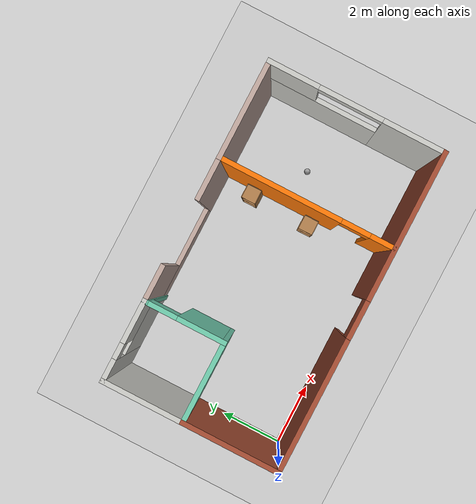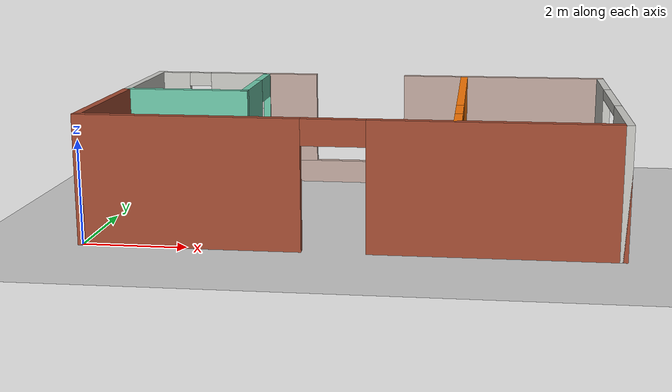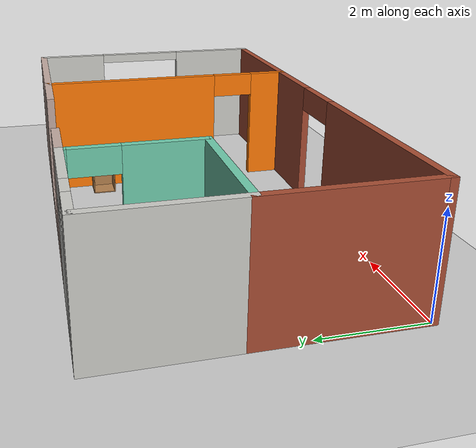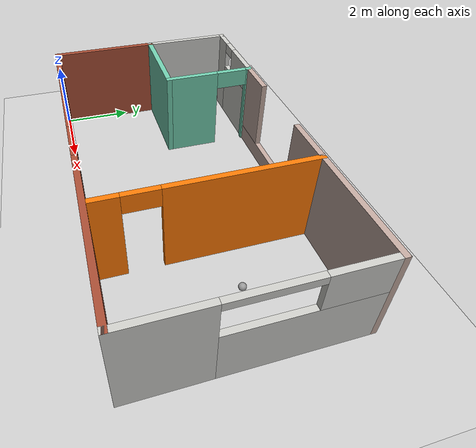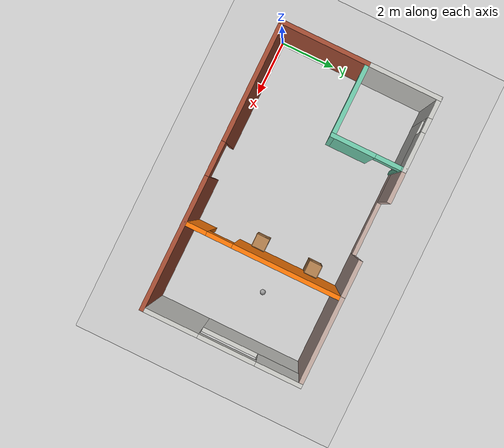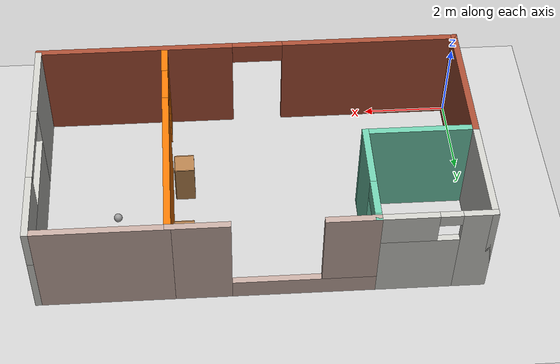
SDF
<sdf version="1.6">
 <world name="default">
  <model name="ground_plane">
   <static>1</static>
   <link name="link">
    <collision name="collision">
     <geometry><plane><normal>0 0 1</normal><size>100 100</size></plane></geometry>
     <surface><friction><ode><mu>100</mu><mu2>50</mu2></ode></friction></surface>
    </collision>
    <visual name="visual">
     <cast_shadows>0</cast_shadows>
     <geometry><plane><normal>0 0 1</normal><size>100 100</size></plane></geometry>
     <material>
      <script><uri>file://media/materials/scripts/gazebo.material</uri><name>Gazebo/Grey</name></script>
     </material>
    </visual>
   </link>
  </model>
  <model name="casa">
   <pose>5 2.75 0 0 -0 0</pose>
   <link name="Wall_29">
    <collision name="Wall_29_Collision">
     <geometry><box><size>3.15 0.15 2.5</size></box></geometry>
     <pose>0 0 1.25 0 -0 0</pose>
    </collision>
    <visual name="Wall_29_Visual">
     <pose>0 0 1.25 0 -0 0</pose>
     <geometry><box><size>3.15 0.15 2.5</size></box></geometry>
     <material>
      <script><uri>file://media/materials/scripts/gazebo.material</uri><name>Gazebo/Bricks</name></script>
      <ambient>1 1 1 1</ambient>
     </material>
     <meta><layer>0</layer></meta>
    </visual>
    <pose>-5 -1.25 0 0 -0 1.5708</pose>
   </link>
   <link name="Wall_31">
    <collision name="Wall_31_Collision">
     <geometry><box><size>2.65 0.15 2.5</size></box></geometry>
     <pose>0 0 1.25 0 -0 0</pose>
    </collision>
    <visual name="Wall_31_Visual">
     <pose>0 0 1.25 0 -0 0</pose>
     <geometry><box><size>2.65 0.15 2.5</size></box></geometry>
     <material>
      <script><uri>file://media/materials/scripts/gazebo.material</uri><name>Gazebo/CeilingTiled</name></script>
      <ambient>1 1 1 1</ambient>
     </material>
     <meta><layer>0</layer></meta>
    </visual>
    <pose>-5 1.5 0 0 -0 1.5708</pose>
   </link>
   <link name="Wall_33">
    <pose>-3.75 2.75 0 0 -0 0</pose>
    <visual name="Wall_33_Visual_0">
     <pose>-0.942604 0 1.25 0 -0 0</pose>
     <geometry><box><size>0.764791 0.15 2.5</size></box></geometry>
     <material>
      <script><uri>file://media/materials/scripts/gazebo.material</uri><name>Gazebo/CeilingTiled</name></script>
      <ambient>1 1 1 1</ambient>
     </material>
     <meta><layer>0</layer></meta>
    </visual>
    <collision name="Wall_33_Collision_0">
     <geometry><box><size>0.764791 0.15 2.5</size></box></geometry>
     <pose>-0.942604 0 1.25 0 -0 0</pose>
    </collision>
    <visual name="Wall_33_Visual_1">
     <pose>0.382396 0 0.85 0 -0 0</pose>
     <geometry><box><size>1.88521 0.15 1.7</size></box></geometry>
     <material>
      <script><uri>file://media/materials/scripts/gazebo.material</uri><name>Gazebo/CeilingTiled</name></script>
      <ambient>1 1 1 1</ambient>
     </material>
     <meta><layer>0</layer></meta>
    </visual>
    <collision name="Wall_33_Collision_1">
     <geometry><box><size>1.88521 0.15 1.7</size></box></geometry>
     <pose>0.382396 0 0.85 0 -0 0</pose>
    </collision>
    <visual name="Wall_33_Visual_2">
     <pose>0.632396 0 2.1 0 -0 0</pose>
     <geometry><box><size>1.38521 0.15 0.8</size></box></geometry>
     <material>
      <script><uri>file://media/materials/scripts/gazebo.material</uri><name>Gazebo/CeilingTiled</name></script>
      <ambient>1 1 1 1</ambient>
     </material>
     <meta><layer>0</layer></meta>
    </visual>
    <collision name="Wall_33_Collision_2">
     <geometry><box><size>1.38521 0.15 0.8</size></box></geometry>
     <pose>0.632396 0 2.1 0 -0 0</pose>
    </collision>
    <visual name="Wall_33_Visual_3">
     <pose>-0.310209 0 2.35 0 -0 0</pose>
     <geometry><box><size>0.5 0.15 0.3</size></box></geometry>
     <material>
      <script><uri>file://media/materials/scripts/gazebo.material</uri><name>Gazebo/CeilingTiled</name></script>
      <ambient>1 1 1 1</ambient>
     </material>
     <meta><layer>0</layer></meta>
    </visual>
    <collision name="Wall_33_Collision_3">
     <geometry><box><size>0.5 0.15 0.3</size></box></geometry>
     <pose>-0.310209 0 2.35 0 -0 0</pose>
    </collision>
   </link>
   <link name="Wall_35">
    <pose>-2.5 1.5 0 0 0 -1.5708</pose>
    <visual name="Wall_35_Visual_0">
     <pose>-1.22797 0 1.25 0 -0 0</pose>
     <geometry><box><size>0.194069 0.15 2.5</size></box></geometry>
     <material>
      <script><uri>file://media/materials/scripts/gazebo.material</uri><name>Gazebo/Grey</name></script>
      <ambient>0.435294 0.796078 0.67451 1</ambient>
     </material>
     <meta><layer>0</layer></meta>
    </visual>
    <collision name="Wall_35_Collision_0">
     <geometry><box><size>0.194069 0.15 2.5</size></box></geometry>
     <pose>-1.22797 0 1.25 0 -0 0</pose>
    </collision>
    <visual name="Wall_35_Visual_1">
     <pose>0.547034 0 1.25 0 -0 0</pose>
     <geometry><box><size>1.55593 0.15 2.5</size></box></geometry>
     <material>
      <script><uri>file://media/materials/scripts/gazebo.material</uri><name>Gazebo/Grey</name></script>
      <ambient>0.435294 0.796078 0.67451 1</ambient>
     </material>
     <meta><layer>0</layer></meta>
    </visual>
    <collision name="Wall_35_Collision_1">
     <geometry><box><size>1.55593 0.15 2.5</size></box></geometry>
     <pose>0.547034 0 1.25 0 -0 0</pose>
    </collision>
    <visual name="Wall_35_Visual_2">
     <pose>-0.680931 0 2.25 0 -0 0</pose>
     <geometry><box><size>0.9 0.15 0.5</size></box></geometry>
     <material>
      <script><uri>file://media/materials/scripts/gazebo.material</uri><name>Gazebo/Grey</name></script>
      <ambient>0.435294 0.796078 0.67451 1</ambient>
     </material>
     <meta><layer>0</layer></meta>
    </visual>
    <collision name="Wall_35_Collision_2">
     <geometry><box><size>0.9 0.15 0.5</size></box></geometry>
     <pose>-0.680931 0 2.25 0 -0 0</pose>
    </collision>
   </link>
   <link name="Wall_37">
    <collision name="Wall_37_Collision">
     <geometry><box><size>2.65 0.15 2.5</size></box></geometry>
     <pose>0 0 1.25 0 -0 0</pose>
    </collision>
    <visual name="Wall_37_Visual">
     <pose>0 0 1.25 0 -0 0</pose>
     <geometry><box><size>2.65 0.15 2.5</size></box></geometry>
     <material>
      <script><uri>file://media/materials/scripts/gazebo.material</uri><name>Gazebo/Grey</name></script>
      <ambient>0.435294 0.796078 0.67451 1</ambient>
     </material>
     <meta><layer>0</layer></meta>
    </visual>
    <pose>-3.75 0.25 0 0 -0 0</pose>
   </link>
   <link name="Wall_39">
    <pose>0 -2.75 0 0 -0 0</pose>
    <visual name="Wall_39_Visual_0">
     <pose>-2.95244 0 1.25 0 -0 0</pose>
     <geometry><box><size>4.24512 0.15 2.5</size></box></geometry>
     <material>
      <script><uri>file://media/materials/scripts/gazebo.material</uri><name>Gazebo/Bricks</name></script>
      <ambient>1 1 1 1</ambient>
     </material>
     <meta><layer>0</layer></meta>
    </visual>
    <collision name="Wall_39_Collision_0">
     <geometry><box><size>4.24512 0.15 2.5</size></box></geometry>
     <pose>-2.95244 0 1.25 0 -0 0</pose>
    </collision>
    <visual name="Wall_39_Visual_1">
     <pose>2.72256 0 1.25 0 -0 0</pose>
     <geometry><box><size>4.70488 0.15 2.5</size></box></geometry>
     <material>
      <script><uri>file://media/materials/scripts/gazebo.material</uri><name>Gazebo/Bricks</name></script>
      <ambient>1 1 1 1</ambient>
     </material>
     <meta><layer>0</layer></meta>
    </visual>
    <collision name="Wall_39_Collision_1">
     <geometry><box><size>4.70488 0.15 2.5</size></box></geometry>
     <pose>2.72256 0 1.25 0 -0 0</pose>
    </collision>
    <visual name="Wall_39_Visual_2">
     <pose>-0.229885 0 2.25 0 -0 0</pose>
     <geometry><box><size>1.2 0.15 0.5</size></box></geometry>
     <material>
      <script><uri>file://media/materials/scripts/gazebo.material</uri><name>Gazebo/Bricks</name></script>
      <ambient>1 1 1 1</ambient>
     </material>
     <meta><layer>0</layer></meta>
    </visual>
    <collision name="Wall_39_Collision_2">
     <geometry><box><size>1.2 0.15 0.5</size></box></geometry>
     <pose>-0.229885 0 2.25 0 -0 0</pose>
    </collision>
   </link>
   <link name="Wall_41">
    <pose>5 0 0 0 -0 1.5708</pose>
    <visual name="Wall_41_Visual_0">
     <pose>-1.81897 0 1.25 0 -0 0</pose>
     <geometry><box><size>2.01206 0.15 2.5</size></box></geometry>
     <material>
      <script><uri>file://media/materials/scripts/gazebo.material</uri><name>Gazebo/CeilingTiled</name></script>
      <ambient>1 1 1 1</ambient>
     </material>
     <meta><layer>0</layer></meta>
    </visual>
    <collision name="Wall_41_Collision_0">
     <geometry><box><size>2.01206 0.15 2.5</size></box></geometry>
     <pose>-1.81897 0 1.25 0 -0 0</pose>
    </collision>
    <visual name="Wall_41_Visual_1">
     <pose>1.00603 0 0.75 0 -0 0</pose>
     <geometry><box><size>3.63794 0.15 1.5</size></box></geometry>
     <material>
      <script><uri>file://media/materials/scripts/gazebo.material</uri><name>Gazebo/CeilingTiled</name></script>
      <ambient>1 1 1 1</ambient>
     </material>
     <meta><layer>0</layer></meta>
    </visual>
    <collision name="Wall_41_Collision_1">
     <geometry><box><size>3.63794 0.15 1.5</size></box></geometry>
     <pose>1.00603 0 0.75 0 -0 0</pose>
    </collision>
    <visual name="Wall_41_Visual_2">
     <pose>2.00603 0 2 0 -0 0</pose>
     <geometry><box><size>1.63794 0.15 1</size></box></geometry>
     <material>
      <script><uri>file://media/materials/scripts/gazebo.material</uri><name>Gazebo/CeilingTiled</name></script>
      <ambient>1 1 1 1</ambient>
     </material>
     <meta><layer>0</layer></meta>
    </visual>
    <collision name="Wall_41_Collision_2">
     <geometry><box><size>1.63794 0.15 1</size></box></geometry>
     <pose>2.00603 0 2 0 -0 0</pose>
    </collision>
    <visual name="Wall_41_Visual_3">
     <pose>0.187064 0 2.4 0 -0 0</pose>
     <geometry><box><size>2 0.15 0.2</size></box></geometry>
     <material>
      <script><uri>file://media/materials/scripts/gazebo.material</uri><name>Gazebo/CeilingTiled</name></script>
      <ambient>1 1 1 1</ambient>
     </material>
     <meta><layer>0</layer></meta>
    </visual>
    <collision name="Wall_41_Collision_3">
     <geometry><box><size>2 0.15 0.2</size></box></geometry>
     <pose>0.187064 0 2.4 0 -0 0</pose>
    </collision>
   </link>
   <link name="Wall_43">
    <collision name="Wall_43_Collision">
     <geometry><box><size>3.15 0.15 2.5</size></box></geometry>
     <pose>0 0 1.25 0 -0 0</pose>
    </collision>
    <visual name="Wall_43_Visual">
     <pose>0 0 1.25 0 -0 0</pose>
     <geometry><box><size>3.15 0.15 2.5</size></box></geometry>
     <material>
      <script><uri>file://media/materials/scripts/gazebo.material</uri><name>Gazebo/Grey</name></script>
      <ambient>0.760784 0.662745 0.627451 1</ambient>
     </material>
     <meta><layer>0</layer></meta>
    </visual>
    <pose>3.5 2.75 0 0 -0 3.14159</pose>
   </link>
   <link name="Wall_45">
    <pose>-0.25 2.75 0 0 -0 3.14159</pose>
    <visual name="Wall_45_Visual_0">
     <pose>-1.61134 0 1.25 0 -0 0</pose>
     <geometry><box><size>1.42731 0.15 2.5</size></box></geometry>
     <material>
      <script><uri>file://media/materials/scripts/gazebo.material</uri><name>Gazebo/Grey</name></script>
      <ambient>0.760784 0.662745 0.627451 1</ambient>
     </material>
     <meta><layer>0</layer></meta>
    </visual>
    <collision name="Wall_45_Collision_0">
     <geometry><box><size>1.42731 0.15 2.5</size></box></geometry>
     <pose>-1.61134 0 1.25 0 -0 0</pose>
    </collision>
    <visual name="Wall_45_Visual_1">
     <pose>0.713658 0 0.25 0 -0 0</pose>
     <geometry><box><size>3.22268 0.15 0.5</size></box></geometry>
     <material>
      <script><uri>file://media/materials/scripts/gazebo.material</uri><name>Gazebo/Grey</name></script>
      <ambient>0.760784 0.662745 0.627451 1</ambient>
     </material>
     <meta><layer>0</layer></meta>
    </visual>
    <collision name="Wall_45_Collision_1">
     <geometry><box><size>3.22268 0.15 0.5</size></box></geometry>
     <pose>0.713658 0 0.25 0 -0 0</pose>
    </collision>
    <visual name="Wall_45_Visual_2">
     <pose>1.71366 0 1.5 0 -0 0</pose>
     <geometry><box><size>1.22269 0.15 2</size></box></geometry>
     <material>
      <script><uri>file://media/materials/scripts/gazebo.material</uri><name>Gazebo/Grey</name></script>
      <ambient>0.760784 0.662745 0.627451 1</ambient>
     </material>
     <meta><layer>0</layer></meta>
    </visual>
    <collision name="Wall_45_Collision_2">
     <geometry><box><size>1.22269 0.15 2</size></box></geometry>
     <pose>1.71366 0 1.5 0 -0 0</pose>
    </collision>
   </link>
   <link name="Wall_48">
    <pose>2 0 0 0 -0 1.5708</pose>
    <visual name="Wall_48_Visual_0">
     <pose>-2.40098 0 1.25 0 -0 0</pose>
     <geometry><box><size>0.848038 0.15 2.5</size></box></geometry>
     <material>
      <script><uri>file://media/materials/scripts/gazebo.material</uri><name>Gazebo/Grey</name></script>
      <ambient>0.996078 0.47451 0.0196078 1</ambient>
     </material>
     <meta><layer>0</layer></meta>
    </visual>
    <collision name="Wall_48_Collision_0">
     <geometry><box><size>0.848038 0.15 2.5</size></box></geometry>
     <pose>-2.40098 0 1.25 0 -0 0</pose>
    </collision>
    <visual name="Wall_48_Visual_1">
     <pose>0.874019 0 1.25 0 -0 0</pose>
     <geometry><box><size>3.90196 0.15 2.5</size></box></geometry>
     <material>
      <script><uri>file://media/materials/scripts/gazebo.material</uri><name>Gazebo/Grey</name></script>
      <ambient>0.996078 0.47451 0.0196078 1</ambient>
     </material>
     <meta><layer>0</layer></meta>
    </visual>
    <collision name="Wall_48_Collision_1">
     <geometry><box><size>3.90196 0.15 2.5</size></box></geometry>
     <pose>0.874019 0 1.25 0 -0 0</pose>
    </collision>
    <visual name="Wall_48_Visual_2">
     <pose>-1.52696 0 2.25 0 -0 0</pose>
     <geometry><box><size>0.9 0.15 0.5</size></box></geometry>
     <material>
      <script><uri>file://media/materials/scripts/gazebo.material</uri><name>Gazebo/Grey</name></script>
      <ambient>0.996078 0.47451 0.0196078 1</ambient>
     </material>
     <meta><layer>0</layer></meta>
    </visual>
    <collision name="Wall_48_Collision_2">
     <geometry><box><size>0.9 0.15 0.5</size></box></geometry>
     <pose>-1.52696 0 2.25 0 -0 0</pose>
    </collision>
   </link>
   <static>1</static>
  </model>
  <model name="my_ball">
   <link name="link_0">
    <inertial>
     <mass>1</mass>
     <inertia><ixx>0.1</ixx><ixy>0</ixy><ixz>0</ixz><iyy>0.1</iyy><iyz>0</iyz><izz>0.1</izz></inertia>
    </inertial>
    <visual name="visual">
     <geometry><sphere><radius>0.1</radius></sphere></geometry>
     <material>
      <lighting>1</lighting>
      <script><uri>file://media/materials/scripts/gazebo.material</uri><name>Gazebo/Grey</name></script>
      <shader type="pixel"><normal_map>__default__</normal_map></shader>
      <ambient>1 1 1 1</ambient>
      <diffuse>1 1 1 1</diffuse>
      <specular>1 1 1 1</specular>
      <emissive>0 0 0 1</emissive>
     </material>
    </visual>
    <collision name="collision">
     <geometry><sphere><radius>0.1</radius></sphere></geometry>
     <surface>
      <friction>
       <ode><mu>1</mu><mu2>1</mu2><fdir1>0 0 0</fdir1><slip1>0</slip1><slip2>0</slip2></ode>
       <torsional>
        <coefficient>1</coefficient>
        <patch_radius>0</patch_radius>
        <surface_radius>0</surface_radius>
        <use_patch_radius>1</use_patch_radius>
        <ode><slip>0</slip></ode>
       </torsional>
      </friction>
      <bounce><restitution_coefficient>0</restitution_coefficient><threshold>1e+06</threshold></bounce>
      <contact>
       <collide_without_contact>0</collide_without_contact>
       <collide_without_contact_bitmask>1</collide_without_contact_bitmask>
       <collide_bitmask>1</collide_bitmask>
       <ode>
        <soft_cfm>0</soft_cfm>
        <soft_erp>0.2</soft_erp>
        <kp>1e+13</kp>
        <kd>1</kd>
        <max_vel>0.01</max_vel>
        <min_depth>0</min_depth>
       </ode>
       <bullet>
        <split_impulse>1</split_impulse>
        <split_impulse_penetration_threshold>-0.01</split_impulse_penetration_threshold>
        <soft_cfm>0</soft_cfm>
        <soft_erp>0.2</soft_erp>
        <kp>1e+13</kp>
        <kd>1</kd>
       </bullet>
      </contact>
     </surface>
    </collision>
   </link>
   <static>0</static>
   <pose>8.24873 3.22459 0.1 0 -0 0</pose>
  </model>
  <model name="cabinet">
   <static>1</static>
   <link name="cabinet_bottom_plate">
    <inertial>
     <pose>0 0 -1 0 -0 0</pose>
     <inertia><ixx>2.05</ixx><ixy>0</ixy><ixz>0</ixz><iyy>2.05</iyy><iyz>0</iyz><izz>2.05</izz></inertia>
     <mass>25</mass>
    </inertial>
    <collision name="cabinet_bottom_plate_geom">
     <pose>0 0 0.01 0 -0 0</pose>
     <geometry><box><size>0.45 0.45 0.02</size></box></geometry>
    </collision>
    <visual name="cabinet_bottom_plate_geom_visual">
     <pose>0 0 0.01 0 -0 0</pose>
     <geometry><box><size>0.45 0.45 0.02</size></box></geometry>
     <material>
      <script><uri>file://media/materials/scripts/gazebo.material</uri><name>Gazebo/Wood</name></script>
     </material>
    </visual>
    <collision name="cabinet_bottom_plate_geom_cabinet_back_plate">
     <pose>0.235 0 0.51 0 -0 0</pose>
     <geometry><box><size>0.02 0.45 1.02</size></box></geometry>
    </collision>
    <visual name="cabinet_bottom_plate_geom_cabinet_back_plate_visual">
     <pose>0.235 0 0.51 0 -0 0</pose>
     <geometry><box><size>0.02 0.45 1.02</size></box></geometry>
     <material>
      <script><uri>file://media/materials/scripts/gazebo.material</uri><name>Gazebo/Wood</name></script>
     </material>
    </visual>
    <collision name="cabinet_bottom_plate_geom_cabinet_left_plate">
     <pose>0 0.235 0.51 0 -0 0</pose>
     <geometry><box><size>0.45 0.02 1.02</size></box></geometry>
    </collision>
    <visual name="cabinet_bottom_plate_geom_cabinet_left_plate_visual">
     <pose>0 0.235 0.51 0 -0 0</pose>
     <geometry><box><size>0.45 0.02 1.02</size></box></geometry>
     <material>
      <script><uri>file://media/materials/scripts/gazebo.material</uri><name>Gazebo/Wood</name></script>
     </material>
    </visual>
    <collision name="cabinet_bottom_plate_geom_cabinet_middle_plate">
     <pose>0 0 0.51 0 -0 0</pose>
     <geometry><box><size>0.45 0.45 0.02</size></box></geometry>
    </collision>
    <visual name="cabinet_bottom_plate_geom_cabinet_middle_plate_visual">
     <pose>0 0 0.51 0 -0 0</pose>
     <geometry><box><size>0.45 0.45 0.02</size></box></geometry>
     <material>
      <script><uri>file://media/materials/scripts/gazebo.material</uri><name>Gazebo/Wood</name></script>
     </material>
    </visual>
    <collision name="cabinet_bottom_plate_geom_cabinet_right_plate">
     <pose>0 -0.235 0.51 0 -0 0</pose>
     <geometry><box><size>0.45 0.02 1.02</size></box></geometry>
    </collision>
    <visual name="cabinet_bottom_plate_geom_cabinet_right_plate_visual">
     <pose>0 -0.235 0.51 0 -0 0</pose>
     <geometry><box><size>0.45 0.02 1.02</size></box></geometry>
     <material>
      <script><uri>file://media/materials/scripts/gazebo.material</uri><name>Gazebo/Wood</name></script>
     </material>
    </visual>
    <collision name="cabinet_bottom_plate_geom_cabinet_top_plate">
     <pose>0 0 1.01 0 -0 0</pose>
     <geometry><box><size>0.45 0.45 0.02</size></box></geometry>
    </collision>
    <visual name="cabinet_bottom_plate_geom_cabinet_top_plate_visual">
     <pose>0 0 1.01 0 -0 0</pose>
     <geometry><box><size>0.45 0.45 0.02</size></box></geometry>
     <material>
      <script><uri>file://media/materials/scripts/gazebo.material</uri><name>Gazebo/Wood</name></script>
     </material>
    </visual>
   </link>
   <pose>6.62812 2.40841 0 0 -0 0</pose>
  </model>
  <model name="cabinet_0">
   <static>1</static>
   <link name="cabinet_bottom_plate">
    <inertial>
     <pose>0 0 -1 0 -0 0</pose>
     <inertia><ixx>2.05</ixx><ixy>0</ixy><ixz>0</ixz><iyy>2.05</iyy><iyz>0</iyz><izz>2.05</izz></inertia>
     <mass>25</mass>
    </inertial>
    <collision name="cabinet_bottom_plate_geom">
     <pose>0 0 0.01 0 -0 0</pose>
     <geometry><box><size>0.45 0.45 0.02</size></box></geometry>
    </collision>
    <visual name="cabinet_bottom_plate_geom_visual">
     <pose>0 0 0.01 0 -0 0</pose>
     <geometry><box><size>0.45 0.45 0.02</size></box></geometry>
     <material>
      <script><uri>file://media/materials/scripts/gazebo.material</uri><name>Gazebo/Wood</name></script>
     </material>
    </visual>
    <collision name="cabinet_bottom_plate_geom_cabinet_back_plate">
     <pose>0.235 0 0.51 0 -0 0</pose>
     <geometry><box><size>0.02 0.45 1.02</size></box></geometry>
    </collision>
    <visual name="cabinet_bottom_plate_geom_cabinet_back_plate_visual">
     <pose>0.235 0 0.51 0 -0 0</pose>
     <geometry><box><size>0.02 0.45 1.02</size></box></geometry>
     <material>
      <script><uri>file://media/materials/scripts/gazebo.material</uri><name>Gazebo/Wood</name></script>
     </material>
    </visual>
    <collision name="cabinet_bottom_plate_geom_cabinet_left_plate">
     <pose>0 0.235 0.51 0 -0 0</pose>
     <geometry><box><size>0.45 0.02 1.02</size></box></geometry>
    </collision>
    <visual name="cabinet_bottom_plate_geom_cabinet_left_plate_visual">
     <pose>0 0.235 0.51 0 -0 0</pose>
     <geometry><box><size>0.45 0.02 1.02</size></box></geometry>
     <material>
      <script><uri>file://media/materials/scripts/gazebo.material</uri><name>Gazebo/Wood</name></script>
     </material>
    </visual>
    <collision name="cabinet_bottom_plate_geom_cabinet_middle_plate">
     <pose>0 0 0.51 0 -0 0</pose>
     <geometry><box><size>0.45 0.45 0.02</size></box></geometry>
    </collision>
    <visual name="cabinet_bottom_plate_geom_cabinet_middle_plate_visual">
     <pose>0 0 0.51 0 -0 0</pose>
     <geometry><box><size>0.45 0.45 0.02</size></box></geometry>
     <material>
      <script><uri>file://media/materials/scripts/gazebo.material</uri><name>Gazebo/Wood</name></script>
     </material>
    </visual>
    <collision name="cabinet_bottom_plate_geom_cabinet_right_plate">
     <pose>0 -0.235 0.51 0 -0 0</pose>
     <geometry><box><size>0.45 0.02 1.02</size></box></geometry>
    </collision>
    <visual name="cabinet_bottom_plate_geom_cabinet_right_plate_visual">
     <pose>0 -0.235 0.51 0 -0 0</pose>
     <geometry><box><size>0.45 0.02 1.02</size></box></geometry>
     <material>
      <script><uri>file://media/materials/scripts/gazebo.material</uri><name>Gazebo/Wood</name></script>
     </material>
    </visual>
    <collision name="cabinet_bottom_plate_geom_cabinet_top_plate">
     <pose>0 0 1.01 0 -0 0</pose>
     <geometry><box><size>0.45 0.45 0.02</size></box></geometry>
    </collision>
    <visual name="cabinet_bottom_plate_geom_cabinet_top_plate_visual">
     <pose>0 0 1.01 0 -0 0</pose>
     <geometry><box><size>0.45 0.45 0.02</size></box></geometry>
     <material>
      <script><uri>file://media/materials/scripts/gazebo.material</uri><name>Gazebo/Wood</name></script>
     </material>
    </visual>
   </link>
   <pose>6.66535 4.39729 0 0 -0 0</pose>
  </model>
 </world>
</sdf>
